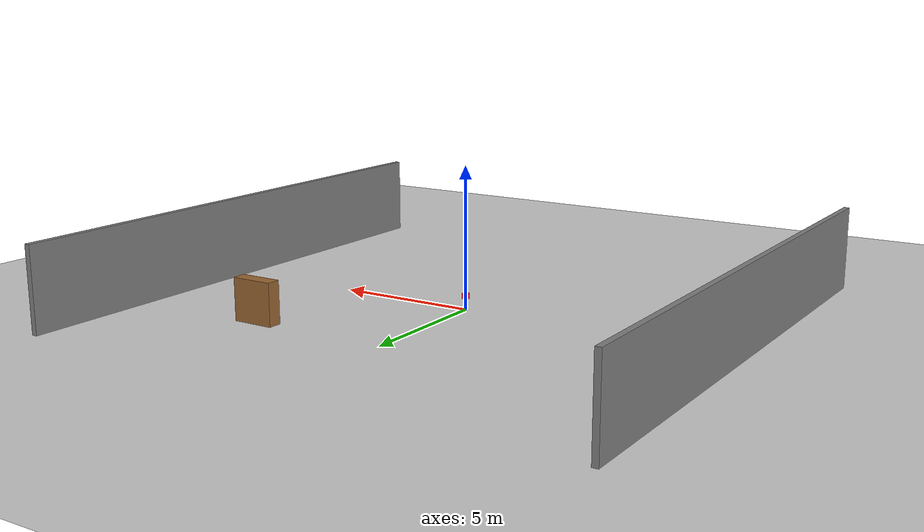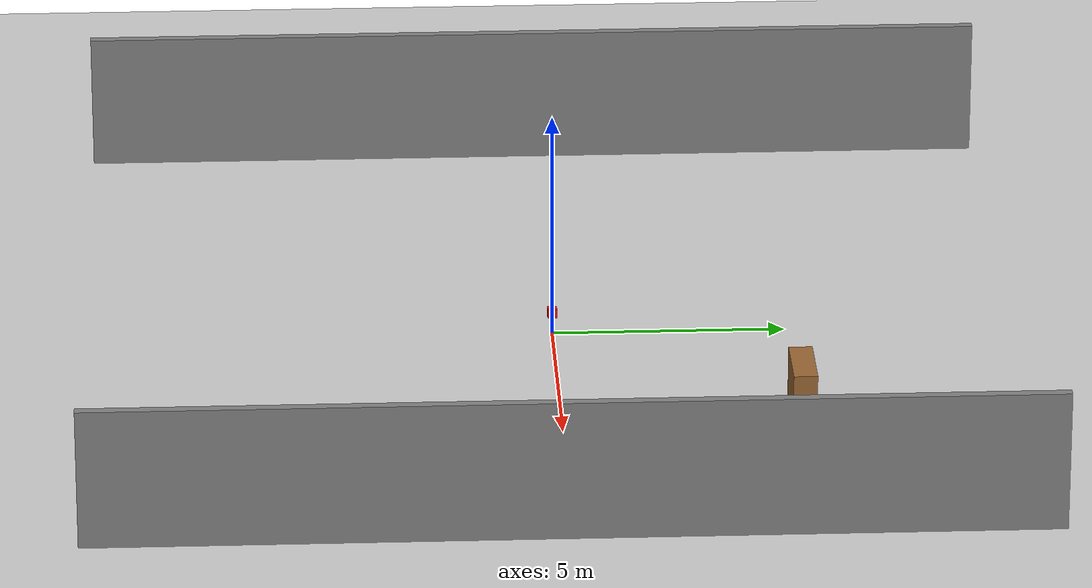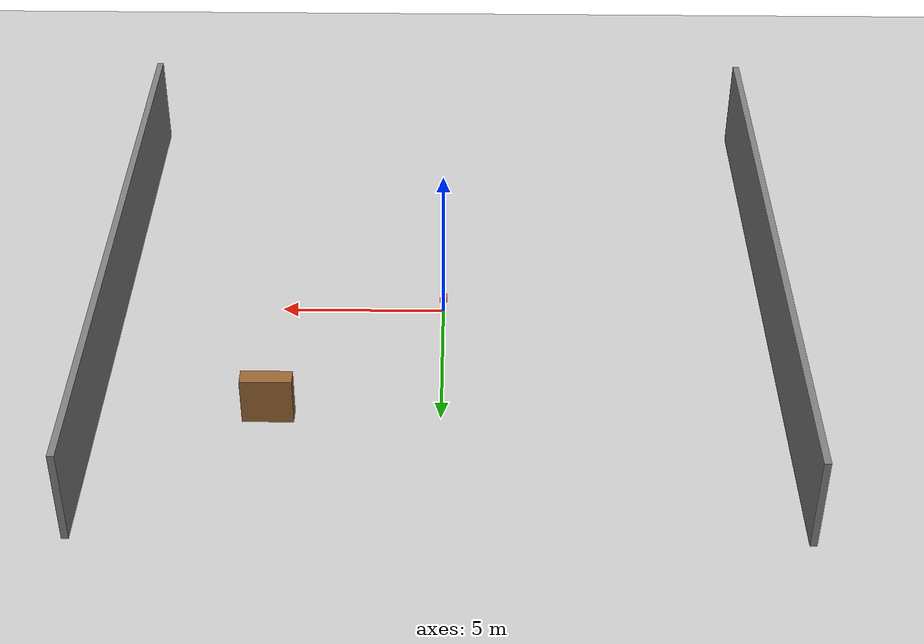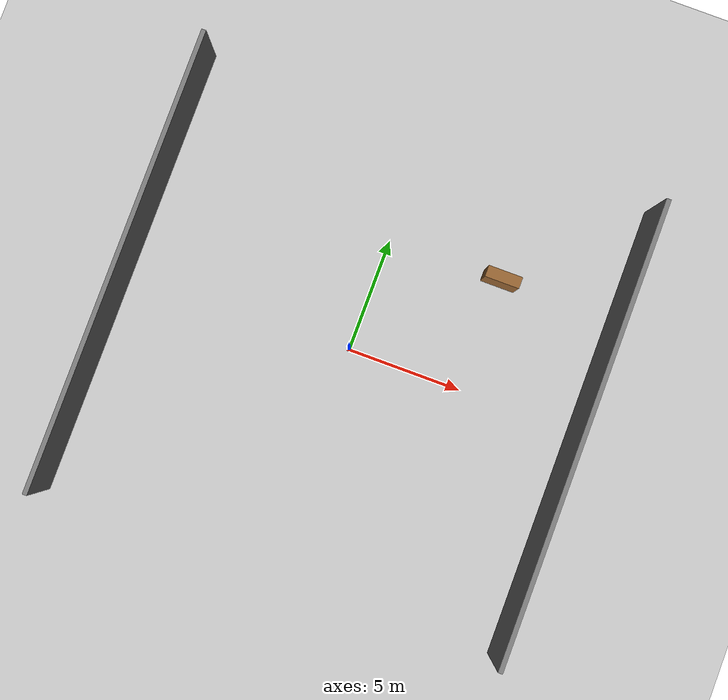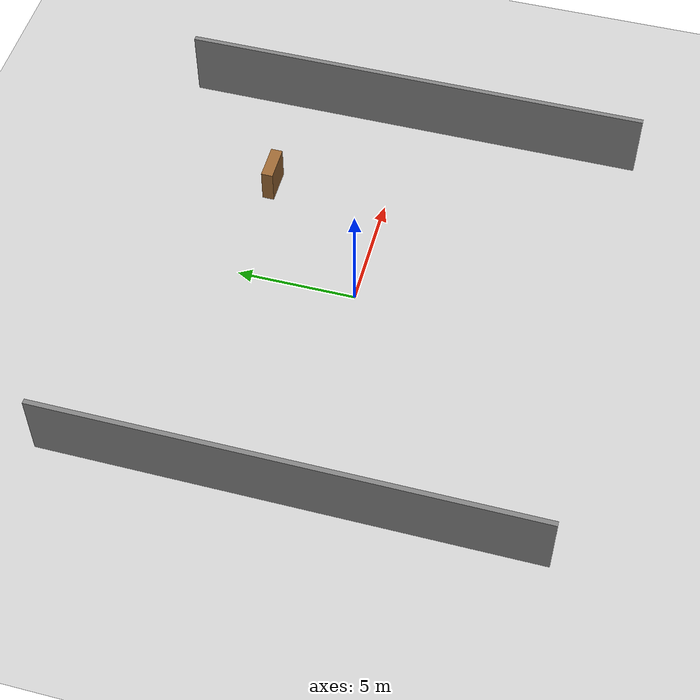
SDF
<?xml version="1.0"?>
<sdf version="1.8">
  <world name="warehouse">
    <!-- Physics -->
    <physics name="dart_physics" type="dart">
      <max_step_size>0.001</max_step_size>
      <real_time_factor>1.0</real_time_factor>
      <real_time_update_rate>1000</real_time_update_rate>
      <dart>
        <solver>
          <solver_type>dantzig</solver_type>
        </solver>
        <collision_detector>bullet</collision_detector>
      </dart>
    </physics>

    <!-- Scene -->
    <scene>
      <ambient>0.4 0.4 0.4 1</ambient>
      <background>0.7 0.7 0.7 1</background>
      <shadows>true</shadows>
    </scene>

    <!-- Lighting -->
    <light type="directional" name="sun">
      <cast_shadows>true</cast_shadows>
      <pose>0 0 10 0 0 0</pose>
      <diffuse>0.8 0.8 0.8 1</diffuse>
      <specular>0.2 0.2 0.2 1</specular>
      <attenuation>
        <range>1000</range>
        <constant>0.9</constant>
        <linear>0.01</linear>
        <quadratic>0.001</quadratic>
      </attenuation>
      <direction>-0.5 0.1 -0.9</direction>
    </light>

    <!-- Ground plane -->
    <model name="ground_plane">
      <static>true</static>
      <link name="link">
        <collision name="collision">
          <geometry>
            <plane>
              <normal>0 0 1</normal>
            </plane>
          </geometry>
          <surface>
            <friction>
              <ode>
                <mu>1.0</mu>
                <mu2>1.0</mu2>
              </ode>
            </friction>
          </surface>
        </collision>
        <visual name="visual">
          <geometry>
            <plane>
              <normal>0 0 1</normal>
              <size>100 100</size>
            </plane>
          </geometry>
          <material>
            <ambient>0.8 0.8 0.8 1</ambient>
            <diffuse>0.8 0.8 0.8 1</diffuse>
          </material>
        </visual>
      </link>
    </model>

    <!-- Warehouse walls -->
    <model name="wall_north">
      <static>true</static>
      <pose>10 0 1.5 0 0 0</pose>
      <link name="link">
        <collision name="collision">
          <geometry>
            <box>
              <size>0.2 20 3</size>
            </box>
          </geometry>
        </collision>
        <visual name="visual">
          <geometry>
            <box>
              <size>0.2 20 3</size>
            </box>
          </geometry>
          <material>
            <ambient>0.5 0.5 0.5 1</ambient>
            <diffuse>0.5 0.5 0.5 1</diffuse>
          </material>
        </visual>
      </link>
    </model>

    <model name="wall_south">
      <static>true</static>
      <pose>-10 0 1.5 0 0 0</pose>
      <link name="link">
        <collision name="collision">
          <geometry>
            <box>
              <size>0.2 20 3</size>
            </box>
          </geometry>
        </collision>
        <visual name="visual">
          <geometry>
            <box>
              <size>0.2 20 3</size>
            </box>
          </geometry>
          <material>
            <ambient>0.5 0.5 0.5 1</ambient>
            <diffuse>0.5 0.5 0.5 1</diffuse>
          </material>
        </visual>
      </link>
    </model>

    <!-- Storage shelves (example) -->
    <model name="shelf_01">
      <static>true</static>
      <pose>5 5 0.75 0 0 0</pose>
      <link name="link">
        <collision name="collision">
          <geometry>
            <box>
              <size>1.5 0.5 1.5</size>
            </box>
          </geometry>
        </collision>
        <visual name="visual">
          <geometry>
            <box>
              <size>1.5 0.5 1.5</size>
            </box>
          </geometry>
          <material>
            <ambient>0.6 0.4 0.2 1</ambient>
            <diffuse>0.6 0.4 0.2 1</diffuse>
          </material>
        </visual>
      </link>
    </model>

    <!-- Box for manipulation (dynamic) -->
    <model name="box_01">
      <pose>0 0 0.5 0 0 0</pose>
      <link name="link">
        <inertial>
          <mass>0.5</mass>
          <inertia>
            <ixx>0.0083</ixx>
            <ixy>0</ixy>
            <ixz>0</ixz>
            <iyy>0.0083</iyy>
            <iyz>0</iyz>
            <izz>0.0083</izz>
          </inertia>
        </inertial>
        <collision name="collision">
          <geometry>
            <box>
              <size>0.2 0.2 0.2</size>
            </box>
          </geometry>
          <surface>
            <friction>
              <ode>
                <mu>0.8</mu>
                <mu2>0.8</mu2>
              </ode>
            </friction>
            <contact>
              <ode>
                <kp>1e6</kp>
                <kd>100</kd>
              </ode>
            </contact>
          </surface>
        </collision>
        <visual name="visual">
          <geometry>
            <box>
              <size>0.2 0.2 0.2</size>
            </box>
          </geometry>
          <material>
            <ambient>1 0 0 1</ambient>
            <diffuse>1 0 0 1</diffuse>
          </material>
        </visual>
      </link>
    </model>

    <!-- ROS 2 clock plugin -->
    <plugin filename="libgz_ros2_control-system" name="gz_ros2_control">
      <parameters>$(find ros_gz_sim)/config/gz_ros2_control_params.yaml</parameters>
    </plugin>

  </world>
</sdf>
